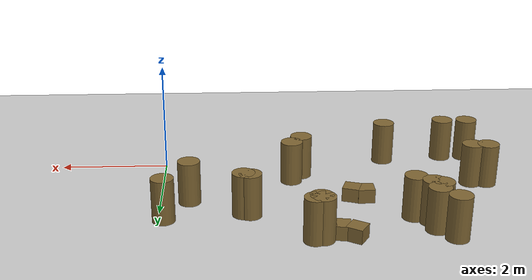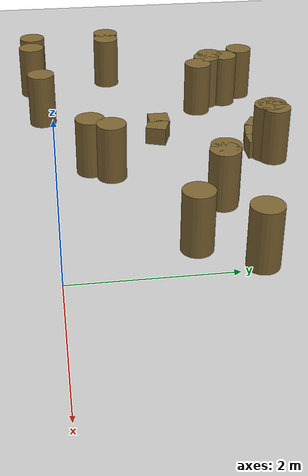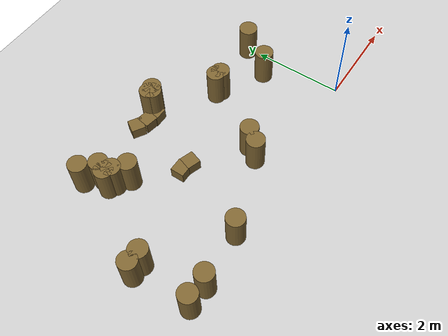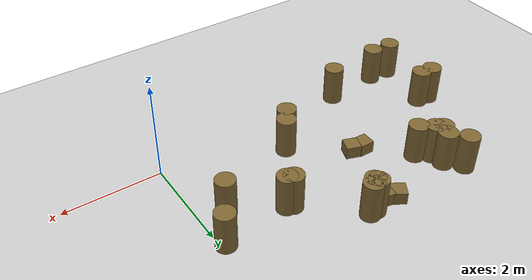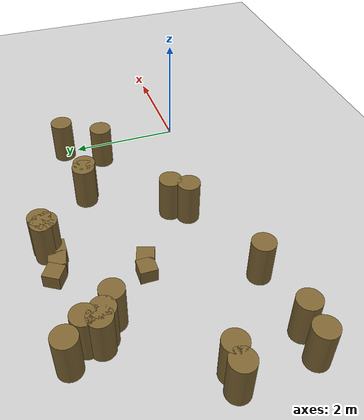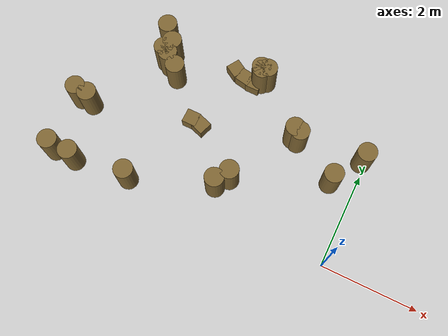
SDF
<sdf version="1.7">
 <world name="default">
  <model name="ground_plane">
   <static>1</static>
   <link name="link">
    <collision name="collision">
     <geometry><plane><normal>0 0 1</normal><size>100 100</size></plane></geometry>
     <surface><friction><ode><mu>100</mu><mu2>50</mu2></ode></friction></surface>
    </collision>
    <visual name="visual">
     <cast_shadows>0</cast_shadows>
     <geometry><plane><normal>0 0 1</normal><size>100 100</size></plane></geometry>
     <material>
      <script><uri>file://media/materials/scripts/gazebo.material</uri><name>Gazebo/Grey</name></script>
     </material>
    </visual>
   </link>
  </model>
  <model name="mini_cylinder_0_clone_0_clone_clone_clone_clone_2">
   <link name="link">
    <inertial>
     <mass>1</mass>
     <inertia><ixx>0.145833</ixx><ixy>0</ixy><ixz>0</ixz><iyy>0.145833</iyy><iyz>0</iyz><izz>0.125</izz></inertia>
    </inertial>
    <visual name="visual">
     <geometry><cylinder><radius>0.2</radius><length>0.8</length></cylinder></geometry>
     <material>
      <script><name>Gazebo/Grey</name><uri>file://media/materials/scripts/gazebo.material</uri></script>
      <shader type="vertex"><normal_map>__default__</normal_map></shader>
      <ambient>0.5 0.4 0.2 1</ambient>
      <diffuse>0.7 0.7 0.7 1</diffuse>
      <specular>0.01 0.01 0.01 1</specular>
      <emissive>0 0 0 1</emissive>
     </material>
    </visual>
    <collision name="collision">
     <geometry><cylinder><radius>0.2</radius><length>0.8</length></cylinder></geometry>
     <surface>
      <friction>
       <ode><mu>1</mu><mu2>1</mu2><fdir1>0 0 0</fdir1><slip1>0</slip1><slip2>0</slip2></ode>
       <torsional>
        <coefficient>1</coefficient>
        <patch_radius>0</patch_radius>
        <surface_radius>0</surface_radius>
        <use_patch_radius>1</use_patch_radius>
        <ode><slip>0</slip></ode>
       </torsional>
      </friction>
      <bounce><restitution_coefficient>0</restitution_coefficient><threshold>1e+06</threshold></bounce>
      <contact>
       <collide_without_contact>0</collide_without_contact>
       <collide_without_contact_bitmask>1</collide_without_contact_bitmask>
       <collide_bitmask>1</collide_bitmask>
       <ode>
        <soft_cfm>0</soft_cfm>
        <soft_erp>0.2</soft_erp>
        <kp>1e+13</kp>
        <kd>1</kd>
        <max_vel>0.01</max_vel>
        <min_depth>0</min_depth>
       </ode>
       <bullet>
        <split_impulse>1</split_impulse>
        <split_impulse_penetration_threshold>-0.01</split_impulse_penetration_threshold>
        <soft_cfm>0</soft_cfm>
        <soft_erp>0.2</soft_erp>
        <kp>1e+13</kp>
        <kd>1</kd>
       </bullet>
      </contact>
     </surface>
    </collision>
   </link>
   <static>1</static>
   <pose>-2.38035 0.779144 0.4 0 -0 0</pose>
  </model>
  <model name="mini_cylinder_0_clone_0_clone_clone_clone_clone_3">
   <link name="link">
    <inertial>
     <mass>1</mass>
     <inertia><ixx>0.145833</ixx><ixy>0</ixy><ixz>0</ixz><iyy>0.145833</iyy><iyz>0</iyz><izz>0.125</izz></inertia>
    </inertial>
    <visual name="visual">
     <geometry><cylinder><radius>0.2</radius><length>0.8</length></cylinder></geometry>
     <material>
      <script><name>Gazebo/Grey</name><uri>file://media/materials/scripts/gazebo.material</uri></script>
      <shader type="vertex"><normal_map>__default__</normal_map></shader>
      <ambient>0.5 0.4 0.2 1</ambient>
      <diffuse>0.7 0.7 0.7 1</diffuse>
      <specular>0.01 0.01 0.01 1</specular>
      <emissive>0 0 0 1</emissive>
     </material>
    </visual>
    <collision name="collision">
     <geometry><cylinder><radius>0.2</radius><length>0.8</length></cylinder></geometry>
     <surface>
      <friction>
       <ode><mu>1</mu><mu2>1</mu2><fdir1>0 0 0</fdir1><slip1>0</slip1><slip2>0</slip2></ode>
       <torsional>
        <coefficient>1</coefficient>
        <patch_radius>0</patch_radius>
        <surface_radius>0</surface_radius>
        <use_patch_radius>1</use_patch_radius>
        <ode><slip>0</slip></ode>
       </torsional>
      </friction>
      <bounce><restitution_coefficient>0</restitution_coefficient><threshold>1e+06</threshold></bounce>
      <contact>
       <collide_without_contact>0</collide_without_contact>
       <collide_without_contact_bitmask>1</collide_without_contact_bitmask>
       <collide_bitmask>1</collide_bitmask>
       <ode>
        <soft_cfm>0</soft_cfm>
        <soft_erp>0.2</soft_erp>
        <kp>1e+13</kp>
        <kd>1</kd>
        <max_vel>0.01</max_vel>
        <min_depth>0</min_depth>
       </ode>
       <bullet>
        <split_impulse>1</split_impulse>
        <split_impulse_penetration_threshold>-0.01</split_impulse_penetration_threshold>
        <soft_cfm>0</soft_cfm>
        <soft_erp>0.2</soft_erp>
        <kp>1e+13</kp>
        <kd>1</kd>
       </bullet>
      </contact>
     </surface>
    </collision>
   </link>
   <static>1</static>
   <pose>-2.5735 0.508666 0.4 0 -0 0</pose>
  </model>
  <model name="mini_cylinder_0_clone_0_clone_clone_clone_clone_clone_27">
   <link name="link">
    <inertial>
     <mass>1</mass>
     <inertia><ixx>0.145833</ixx><ixy>0</ixy><ixz>0</ixz><iyy>0.145833</iyy><iyz>0</iyz><izz>0.125</izz></inertia>
    </inertial>
    <visual name="visual">
     <geometry><cylinder><radius>0.2</radius><length>0.8</length></cylinder></geometry>
     <material>
      <script><name>Gazebo/Grey</name><uri>file://media/materials/scripts/gazebo.material</uri></script>
      <shader type="vertex"><normal_map>__default__</normal_map></shader>
      <ambient>0.5 0.4 0.2 1</ambient>
      <diffuse>0.7 0.7 0.7 1</diffuse>
      <specular>0.01 0.01 0.01 1</specular>
      <emissive>0 0 0 1</emissive>
     </material>
    </visual>
    <collision name="collision">
     <geometry><cylinder><radius>0.2</radius><length>0.8</length></cylinder></geometry>
     <surface>
      <friction>
       <ode><mu>1</mu><mu2>1</mu2><fdir1>0 0 0</fdir1><slip1>0</slip1><slip2>0</slip2></ode>
       <torsional>
        <coefficient>1</coefficient>
        <patch_radius>0</patch_radius>
        <surface_radius>0</surface_radius>
        <use_patch_radius>1</use_patch_radius>
        <ode><slip>0</slip></ode>
       </torsional>
      </friction>
      <bounce><restitution_coefficient>0</restitution_coefficient><threshold>1e+06</threshold></bounce>
      <contact>
       <collide_without_contact>0</collide_without_contact>
       <collide_without_contact_bitmask>1</collide_without_contact_bitmask>
       <collide_bitmask>1</collide_bitmask>
       <ode>
        <soft_cfm>0</soft_cfm>
        <soft_erp>0.2</soft_erp>
        <kp>1e+13</kp>
        <kd>1</kd>
        <max_vel>0.01</max_vel>
        <min_depth>0</min_depth>
       </ode>
       <bullet>
        <split_impulse>1</split_impulse>
        <split_impulse_penetration_threshold>-0.01</split_impulse_penetration_threshold>
        <soft_cfm>0</soft_cfm>
        <soft_erp>0.2</soft_erp>
        <kp>1e+13</kp>
        <kd>1</kd>
       </bullet>
      </contact>
     </surface>
    </collision>
   </link>
   <static>1</static>
   <pose>-4.23731 -0.11186 0.4 0 -0 0</pose>
  </model>
  <model name="mini_cylinder_0_clone_0_clone_clone_clone_clone_clone_44">
   <link name="link">
    <inertial>
     <mass>1</mass>
     <inertia><ixx>0.145833</ixx><ixy>0</ixy><ixz>0</ixz><iyy>0.145833</iyy><iyz>0</iyz><izz>0.125</izz></inertia>
    </inertial>
    <visual name="visual">
     <geometry><cylinder><radius>0.2</radius><length>0.8</length></cylinder></geometry>
     <material>
      <script><name>Gazebo/Grey</name><uri>file://media/materials/scripts/gazebo.material</uri></script>
      <shader type="vertex"><normal_map>__default__</normal_map></shader>
      <ambient>0.5 0.4 0.2 1</ambient>
      <diffuse>0.7 0.7 0.7 1</diffuse>
      <specular>0.01 0.01 0.01 1</specular>
      <emissive>0 0 0 1</emissive>
     </material>
    </visual>
    <collision name="collision">
     <geometry><cylinder><radius>0.2</radius><length>0.8</length></cylinder></geometry>
     <surface>
      <friction>
       <ode><mu>1</mu><mu2>1</mu2><fdir1>0 0 0</fdir1><slip1>0</slip1><slip2>0</slip2></ode>
       <torsional>
        <coefficient>1</coefficient>
        <patch_radius>0</patch_radius>
        <surface_radius>0</surface_radius>
        <use_patch_radius>1</use_patch_radius>
        <ode><slip>0</slip></ode>
       </torsional>
      </friction>
      <bounce><restitution_coefficient>0</restitution_coefficient><threshold>1e+06</threshold></bounce>
      <contact>
       <collide_without_contact>0</collide_without_contact>
       <collide_without_contact_bitmask>1</collide_without_contact_bitmask>
       <collide_bitmask>1</collide_bitmask>
       <ode>
        <soft_cfm>0</soft_cfm>
        <soft_erp>0.2</soft_erp>
        <kp>1e+13</kp>
        <kd>1</kd>
        <max_vel>0.01</max_vel>
        <min_depth>0</min_depth>
       </ode>
       <bullet>
        <split_impulse>1</split_impulse>
        <split_impulse_penetration_threshold>-0.01</split_impulse_penetration_threshold>
        <soft_cfm>0</soft_cfm>
        <soft_erp>0.2</soft_erp>
        <kp>1e+13</kp>
        <kd>1</kd>
       </bullet>
      </contact>
     </surface>
    </collision>
   </link>
   <static>1</static>
   <pose>-0.100224 2.27857 0.4 0 -0 0</pose>
  </model>
  <model name="mini_cylinder_0_clone_0_clone_clone_clone_clone_clone_46">
   <link name="link">
    <inertial>
     <mass>1</mass>
     <inertia><ixx>0.145833</ixx><ixy>0</ixy><ixz>0</ixz><iyy>0.145833</iyy><iyz>0</iyz><izz>0.125</izz></inertia>
    </inertial>
    <visual name="visual">
     <geometry><cylinder><radius>0.2</radius><length>0.8</length></cylinder></geometry>
     <material>
      <script><name>Gazebo/Grey</name><uri>file://media/materials/scripts/gazebo.material</uri></script>
      <shader type="vertex"><normal_map>__default__</normal_map></shader>
      <ambient>0.5 0.4 0.2 1</ambient>
      <diffuse>0.7 0.7 0.7 1</diffuse>
      <specular>0.01 0.01 0.01 1</specular>
      <emissive>0 0 0 1</emissive>
     </material>
    </visual>
    <collision name="collision">
     <geometry><cylinder><radius>0.2</radius><length>0.8</length></cylinder></geometry>
     <surface>
      <friction>
       <ode><mu>1</mu><mu2>1</mu2><fdir1>0 0 0</fdir1><slip1>0</slip1><slip2>0</slip2></ode>
       <torsional>
        <coefficient>1</coefficient>
        <patch_radius>0</patch_radius>
        <surface_radius>0</surface_radius>
        <use_patch_radius>1</use_patch_radius>
        <ode><slip>0</slip></ode>
       </torsional>
      </friction>
      <bounce><restitution_coefficient>0</restitution_coefficient><threshold>1e+06</threshold></bounce>
      <contact>
       <collide_without_contact>0</collide_without_contact>
       <collide_without_contact_bitmask>1</collide_without_contact_bitmask>
       <collide_bitmask>1</collide_bitmask>
       <ode>
        <soft_cfm>0</soft_cfm>
        <soft_erp>0.2</soft_erp>
        <kp>1e+13</kp>
        <kd>1</kd>
        <max_vel>0.01</max_vel>
        <min_depth>0</min_depth>
       </ode>
       <bullet>
        <split_impulse>1</split_impulse>
        <split_impulse_penetration_threshold>-0.01</split_impulse_penetration_threshold>
        <soft_cfm>0</soft_cfm>
        <soft_erp>0.2</soft_erp>
        <kp>1e+13</kp>
        <kd>1</kd>
       </bullet>
      </contact>
     </surface>
    </collision>
   </link>
   <static>1</static>
   <pose>-5.41639 -0.237959 0.4 0 -0 0</pose>
  </model>
  <model name="mini_cylinder_0_clone_0_clone_clone_clone_clone_clone_47">
   <link name="link">
    <inertial>
     <mass>1</mass>
     <inertia><ixx>0.145833</ixx><ixy>0</ixy><ixz>0</ixz><iyy>0.145833</iyy><iyz>0</iyz><izz>0.125</izz></inertia>
    </inertial>
    <visual name="visual">
     <geometry><cylinder><radius>0.2</radius><length>0.8</length></cylinder></geometry>
     <material>
      <script><name>Gazebo/Grey</name><uri>file://media/materials/scripts/gazebo.material</uri></script>
      <shader type="vertex"><normal_map>__default__</normal_map></shader>
      <ambient>0.5 0.4 0.2 1</ambient>
      <diffuse>0.7 0.7 0.7 1</diffuse>
      <specular>0.01 0.01 0.01 1</specular>
      <emissive>0 0 0 1</emissive>
     </material>
    </visual>
    <collision name="collision">
     <geometry><cylinder><radius>0.2</radius><length>0.8</length></cylinder></geometry>
     <surface>
      <friction>
       <ode><mu>1</mu><mu2>1</mu2><fdir1>0 0 0</fdir1><slip1>0</slip1><slip2>0</slip2></ode>
       <torsional>
        <coefficient>1</coefficient>
        <patch_radius>0</patch_radius>
        <surface_radius>0</surface_radius>
        <use_patch_radius>1</use_patch_radius>
        <ode><slip>0</slip></ode>
       </torsional>
      </friction>
      <bounce><restitution_coefficient>0</restitution_coefficient><threshold>1e+06</threshold></bounce>
      <contact>
       <collide_without_contact>0</collide_without_contact>
       <collide_without_contact_bitmask>1</collide_without_contact_bitmask>
       <collide_bitmask>1</collide_bitmask>
       <ode>
        <soft_cfm>0</soft_cfm>
        <soft_erp>0.2</soft_erp>
        <kp>1e+13</kp>
        <kd>1</kd>
        <max_vel>0.01</max_vel>
        <min_depth>0</min_depth>
       </ode>
       <bullet>
        <split_impulse>1</split_impulse>
        <split_impulse_penetration_threshold>-0.01</split_impulse_penetration_threshold>
        <soft_cfm>0</soft_cfm>
        <soft_erp>0.2</soft_erp>
        <kp>1e+13</kp>
        <kd>1</kd>
       </bullet>
      </contact>
     </surface>
    </collision>
   </link>
   <static>1</static>
   <pose>-5.88824 -0.222229 0.4 0 -0 0</pose>
  </model>
  <model name="mini_box_0.3_clone_12">
   <link name="link">
    <inertial>
     <mass>1</mass>
     <inertia>
      <ixx>0.166667</ixx>
      <ixy>0</ixy>
      <ixz>0</ixz>
      <iyy>0.166667</iyy>
      <iyz>0</iyz>
      <izz>0.166667</izz>
     </inertia>
    </inertial>
    <visual name="visual">
     <geometry><box><size>0.3 0.3 0.5</size></box></geometry>
     <material>
      <script><name>Gazebo/Grey</name><uri>file://media/materials/scripts/gazebo.material</uri></script>
      <shader type="vertex"><normal_map>__default__</normal_map></shader>
      <ambient>0.5 0.4 0.2 1</ambient>
      <diffuse>0.7 0.7 0.7 1</diffuse>
      <specular>0.01 0.01 0.01 1</specular>
      <emissive>0 0 0 1</emissive>
     </material>
    </visual>
    <collision name="collision">
     <geometry><box><size>0.3 0.3 0.3</size></box></geometry>
     <surface>
      <friction>
       <ode><mu>1</mu><mu2>1</mu2><fdir1>0 0 0</fdir1><slip1>0</slip1><slip2>0</slip2></ode>
       <torsional>
        <coefficient>1</coefficient>
        <patch_radius>0</patch_radius>
        <surface_radius>0</surface_radius>
        <use_patch_radius>1</use_patch_radius>
        <ode><slip>0</slip></ode>
       </torsional>
      </friction>
      <bounce><restitution_coefficient>0</restitution_coefficient><threshold>1e+06</threshold></bounce>
      <contact>
       <collide_without_contact>0</collide_without_contact>
       <collide_without_contact_bitmask>1</collide_without_contact_bitmask>
       <collide_bitmask>1</collide_bitmask>
       <ode>
        <soft_cfm>0</soft_cfm>
        <soft_erp>0.2</soft_erp>
        <kp>1e+13</kp>
        <kd>1</kd>
        <max_vel>0.01</max_vel>
        <min_depth>0</min_depth>
       </ode>
       <bullet>
        <split_impulse>1</split_impulse>
        <split_impulse_penetration_threshold>-0.01</split_impulse_penetration_threshold>
        <soft_cfm>0</soft_cfm>
        <soft_erp>0.2</soft_erp>
        <kp>1e+13</kp>
        <kd>1</kd>
       </bullet>
      </contact>
     </surface>
    </collision>
   </link>
   <static>1</static>
   <pose>-2.81926 2.90527 0 0 -0 0</pose>
  </model>
  <model name="mini_box_0.3_clone_13">
   <link name="link">
    <inertial>
     <mass>1</mass>
     <inertia>
      <ixx>0.166667</ixx>
      <ixy>0</ixy>
      <ixz>0</ixz>
      <iyy>0.166667</iyy>
      <iyz>0</iyz>
      <izz>0.166667</izz>
     </inertia>
    </inertial>
    <visual name="visual">
     <geometry><box><size>0.3 0.3 0.5</size></box></geometry>
     <material>
      <script><name>Gazebo/Grey</name><uri>file://media/materials/scripts/gazebo.material</uri></script>
      <shader type="vertex"><normal_map>__default__</normal_map></shader>
      <ambient>0.5 0.4 0.2 1</ambient>
      <diffuse>0.7 0.7 0.7 1</diffuse>
      <specular>0.01 0.01 0.01 1</specular>
      <emissive>0 0 0 1</emissive>
     </material>
    </visual>
    <collision name="collision">
     <geometry><box><size>0.3 0.3 0.3</size></box></geometry>
     <surface>
      <friction>
       <ode><mu>1</mu><mu2>1</mu2><fdir1>0 0 0</fdir1><slip1>0</slip1><slip2>0</slip2></ode>
       <torsional>
        <coefficient>1</coefficient>
        <patch_radius>0</patch_radius>
        <surface_radius>0</surface_radius>
        <use_patch_radius>1</use_patch_radius>
        <ode><slip>0</slip></ode>
       </torsional>
      </friction>
      <bounce><restitution_coefficient>0</restitution_coefficient><threshold>1e+06</threshold></bounce>
      <contact>
       <collide_without_contact>0</collide_without_contact>
       <collide_without_contact_bitmask>1</collide_without_contact_bitmask>
       <collide_bitmask>1</collide_bitmask>
       <ode>
        <soft_cfm>0</soft_cfm>
        <soft_erp>0.2</soft_erp>
        <kp>1e+13</kp>
        <kd>1</kd>
        <max_vel>0.01</max_vel>
        <min_depth>0</min_depth>
       </ode>
       <bullet>
        <split_impulse>1</split_impulse>
        <split_impulse_penetration_threshold>-0.01</split_impulse_penetration_threshold>
        <soft_cfm>0</soft_cfm>
        <soft_erp>0.2</soft_erp>
        <kp>1e+13</kp>
        <kd>1</kd>
       </bullet>
      </contact>
     </surface>
    </collision>
   </link>
   <static>1</static>
   <pose>-3.05619 2.93682 0 0 0 -0.172565</pose>
  </model>
  <model name="mini_box_0.3_clone_14">
   <link name="link">
    <inertial>
     <mass>1</mass>
     <inertia>
      <ixx>0.166667</ixx>
      <ixy>0</ixy>
      <ixz>0</ixz>
      <iyy>0.166667</iyy>
      <iyz>0</iyz>
      <izz>0.166667</izz>
     </inertia>
    </inertial>
    <visual name="visual">
     <geometry><box><size>0.3 0.3 0.5</size></box></geometry>
     <material>
      <script><name>Gazebo/Grey</name><uri>file://media/materials/scripts/gazebo.material</uri></script>
      <shader type="vertex"><normal_map>__default__</normal_map></shader>
      <ambient>0.5 0.4 0.2 1</ambient>
      <diffuse>0.7 0.7 0.7 1</diffuse>
      <specular>0.01 0.01 0.01 1</specular>
      <emissive>0 0 0 1</emissive>
     </material>
    </visual>
    <collision name="collision">
     <geometry><box><size>0.3 0.3 0.3</size></box></geometry>
     <surface>
      <friction>
       <ode><mu>1</mu><mu2>1</mu2><fdir1>0 0 0</fdir1><slip1>0</slip1><slip2>0</slip2></ode>
       <torsional>
        <coefficient>1</coefficient>
        <patch_radius>0</patch_radius>
        <surface_radius>0</surface_radius>
        <use_patch_radius>1</use_patch_radius>
        <ode><slip>0</slip></ode>
       </torsional>
      </friction>
      <bounce><restitution_coefficient>0</restitution_coefficient><threshold>1e+06</threshold></bounce>
      <contact>
       <collide_without_contact>0</collide_without_contact>
       <collide_without_contact_bitmask>1</collide_without_contact_bitmask>
       <collide_bitmask>1</collide_bitmask>
       <ode>
        <soft_cfm>0</soft_cfm>
        <soft_erp>0.2</soft_erp>
        <kp>1e+13</kp>
        <kd>1</kd>
        <max_vel>0.01</max_vel>
        <min_depth>0</min_depth>
       </ode>
       <bullet>
        <split_impulse>1</split_impulse>
        <split_impulse_penetration_threshold>-0.01</split_impulse_penetration_threshold>
        <soft_cfm>0</soft_cfm>
        <soft_erp>0.2</soft_erp>
        <kp>1e+13</kp>
        <kd>1</kd>
       </bullet>
      </contact>
     </surface>
    </collision>
   </link>
   <static>1</static>
   <pose>-3.30883 3.03157 0 0 0 -0.55205</pose>
  </model>
  <model name="mini_box_0.3_clone_12_clone">
   <link name="link">
    <inertial>
     <mass>1</mass>
     <inertia>
      <ixx>0.166667</ixx>
      <ixy>0</ixy>
      <ixz>0</ixz>
      <iyy>0.166667</iyy>
      <iyz>0</iyz>
      <izz>0.166667</izz>
     </inertia>
    </inertial>
    <visual name="visual">
     <geometry><box><size>0.3 0.3 0.5</size></box></geometry>
     <material>
      <script><name>Gazebo/Grey</name><uri>file://media/materials/scripts/gazebo.material</uri></script>
      <shader type="vertex"><normal_map>__default__</normal_map></shader>
      <ambient>0.5 0.4 0.2 1</ambient>
      <diffuse>0.7 0.7 0.7 1</diffuse>
      <specular>0.01 0.01 0.01 1</specular>
      <emissive>0 0 0 1</emissive>
     </material>
    </visual>
    <collision name="collision">
     <geometry><box><size>0.3 0.3 0.3</size></box></geometry>
     <surface>
      <friction>
       <ode><mu>1</mu><mu2>1</mu2><fdir1>0 0 0</fdir1><slip1>0</slip1><slip2>0</slip2></ode>
       <torsional>
        <coefficient>1</coefficient>
        <patch_radius>0</patch_radius>
        <surface_radius>0</surface_radius>
        <use_patch_radius>1</use_patch_radius>
        <ode><slip>0</slip></ode>
       </torsional>
      </friction>
      <bounce><restitution_coefficient>0</restitution_coefficient><threshold>1e+06</threshold></bounce>
      <contact>
       <collide_without_contact>0</collide_without_contact>
       <collide_without_contact_bitmask>1</collide_without_contact_bitmask>
       <collide_bitmask>1</collide_bitmask>
       <ode>
        <soft_cfm>0</soft_cfm>
        <soft_erp>0.2</soft_erp>
        <kp>1e+13</kp>
        <kd>1</kd>
        <max_vel>0.01</max_vel>
        <min_depth>0</min_depth>
       </ode>
       <bullet>
        <split_impulse>1</split_impulse>
        <split_impulse_penetration_threshold>-0.01</split_impulse_penetration_threshold>
        <soft_cfm>0</soft_cfm>
        <soft_erp>0.2</soft_erp>
        <kp>1e+13</kp>
        <kd>1</kd>
       </bullet>
      </contact>
     </surface>
    </collision>
   </link>
   <static>1</static>
   <pose>-3.65865 1.60216 0 0 -0 0</pose>
  </model>
  <model name="mini_box_0.3_clone_12_clone_0">
   <link name="link">
    <inertial>
     <mass>1</mass>
     <inertia>
      <ixx>0.166667</ixx>
      <ixy>0</ixy>
      <ixz>0</ixz>
      <iyy>0.166667</iyy>
      <iyz>0</iyz>
      <izz>0.166667</izz>
     </inertia>
    </inertial>
    <visual name="visual">
     <geometry><box><size>0.3 0.3 0.5</size></box></geometry>
     <material>
      <script><name>Gazebo/Grey</name><uri>file://media/materials/scripts/gazebo.material</uri></script>
      <shader type="vertex"><normal_map>__default__</normal_map></shader>
      <ambient>0.5 0.4 0.2 1</ambient>
      <diffuse>0.7 0.7 0.7 1</diffuse>
      <specular>0.01 0.01 0.01 1</specular>
      <emissive>0 0 0 1</emissive>
     </material>
    </visual>
    <collision name="collision">
     <geometry><box><size>0.3 0.3 0.3</size></box></geometry>
     <surface>
      <friction>
       <ode><mu>1</mu><mu2>1</mu2><fdir1>0 0 0</fdir1><slip1>0</slip1><slip2>0</slip2></ode>
       <torsional>
        <coefficient>1</coefficient>
        <patch_radius>0</patch_radius>
        <surface_radius>0</surface_radius>
        <use_patch_radius>1</use_patch_radius>
        <ode><slip>0</slip></ode>
       </torsional>
      </friction>
      <bounce><restitution_coefficient>0</restitution_coefficient><threshold>1e+06</threshold></bounce>
      <contact>
       <collide_without_contact>0</collide_without_contact>
       <collide_without_contact_bitmask>1</collide_without_contact_bitmask>
       <collide_bitmask>1</collide_bitmask>
       <ode>
        <soft_cfm>0</soft_cfm>
        <soft_erp>0.2</soft_erp>
        <kp>1e+13</kp>
        <kd>1</kd>
        <max_vel>0.01</max_vel>
        <min_depth>0</min_depth>
       </ode>
       <bullet>
        <split_impulse>1</split_impulse>
        <split_impulse_penetration_threshold>-0.01</split_impulse_penetration_threshold>
        <soft_cfm>0</soft_cfm>
        <soft_erp>0.2</soft_erp>
        <kp>1e+13</kp>
        <kd>1</kd>
       </bullet>
      </contact>
     </surface>
    </collision>
   </link>
   <static>1</static>
   <pose>-3.41628 1.55201 0 0 0 -0.326474</pose>
  </model>
  <model name="mini_cylinder_0_clone_0_clone_clone_clone_clone_clone_49_clone">
   <link name="link">
    <inertial>
     <mass>1</mass>
     <inertia><ixx>0.145833</ixx><ixy>0</ixy><ixz>0</ixz><iyy>0.145833</iyy><iyz>0</iyz><izz>0.125</izz></inertia>
    </inertial>
    <visual name="visual">
     <geometry><cylinder><radius>0.2</radius><length>0.8</length></cylinder></geometry>
     <material>
      <script><name>Gazebo/Grey</name><uri>file://media/materials/scripts/gazebo.material</uri></script>
      <shader type="vertex"><normal_map>__default__</normal_map></shader>
      <ambient>0.5 0.4 0.2 1</ambient>
      <diffuse>0.7 0.7 0.7 1</diffuse>
      <specular>0.01 0.01 0.01 1</specular>
      <emissive>0 0 0 1</emissive>
     </material>
    </visual>
    <collision name="collision">
     <geometry><cylinder><radius>0.2</radius><length>0.8</length></cylinder></geometry>
     <surface>
      <friction>
       <ode><mu>1</mu><mu2>1</mu2><fdir1>0 0 0</fdir1><slip1>0</slip1><slip2>0</slip2></ode>
       <torsional>
        <coefficient>1</coefficient>
        <patch_radius>0</patch_radius>
        <surface_radius>0</surface_radius>
        <use_patch_radius>1</use_patch_radius>
        <ode><slip>0</slip></ode>
       </torsional>
      </friction>
      <bounce><restitution_coefficient>0</restitution_coefficient><threshold>1e+06</threshold></bounce>
      <contact>
       <collide_without_contact>0</collide_without_contact>
       <collide_without_contact_bitmask>1</collide_without_contact_bitmask>
       <collide_bitmask>1</collide_bitmask>
       <ode>
        <soft_cfm>0</soft_cfm>
        <soft_erp>0.2</soft_erp>
        <kp>1e+13</kp>
        <kd>1</kd>
        <max_vel>0.01</max_vel>
        <min_depth>0</min_depth>
       </ode>
       <bullet>
        <split_impulse>1</split_impulse>
        <split_impulse_penetration_threshold>-0.01</split_impulse_penetration_threshold>
        <soft_cfm>0</soft_cfm>
        <soft_erp>0.2</soft_erp>
        <kp>1e+13</kp>
        <kd>1</kd>
       </bullet>
      </contact>
     </surface>
    </collision>
   </link>
   <static>1</static>
   <pose>-2.75224 3.06018 0.4 0 -0 0</pose>
  </model>
  <model name="mini_cylinder_0_clone_0_clone_clone_clone_clone_clone_49_clone_7">
   <link name="link">
    <inertial>
     <mass>1</mass>
     <inertia><ixx>0.145833</ixx><ixy>0</ixy><ixz>0</ixz><iyy>0.145833</iyy><iyz>0</iyz><izz>0.125</izz></inertia>
    </inertial>
    <visual name="visual">
     <geometry><cylinder><radius>0.2</radius><length>0.8</length></cylinder></geometry>
     <material>
      <script><name>Gazebo/Grey</name><uri>file://media/materials/scripts/gazebo.material</uri></script>
      <shader type="vertex"><normal_map>__default__</normal_map></shader>
      <ambient>0.5 0.4 0.2 1</ambient>
      <diffuse>0.7 0.7 0.7 1</diffuse>
      <specular>0.01 0.01 0.01 1</specular>
      <emissive>0 0 0 1</emissive>
     </material>
    </visual>
    <collision name="collision">
     <geometry><cylinder><radius>0.2</radius><length>0.8</length></cylinder></geometry>
     <surface>
      <friction>
       <ode><mu>1</mu><mu2>1</mu2><fdir1>0 0 0</fdir1><slip1>0</slip1><slip2>0</slip2></ode>
       <torsional>
        <coefficient>1</coefficient>
        <patch_radius>0</patch_radius>
        <surface_radius>0</surface_radius>
        <use_patch_radius>1</use_patch_radius>
        <ode><slip>0</slip></ode>
       </torsional>
      </friction>
      <bounce><restitution_coefficient>0</restitution_coefficient><threshold>1e+06</threshold></bounce>
      <contact>
       <collide_without_contact>0</collide_without_contact>
       <collide_without_contact_bitmask>1</collide_without_contact_bitmask>
       <collide_bitmask>1</collide_bitmask>
       <ode>
        <soft_cfm>0</soft_cfm>
        <soft_erp>0.2</soft_erp>
        <kp>1e+13</kp>
        <kd>1</kd>
        <max_vel>0.01</max_vel>
        <min_depth>0</min_depth>
       </ode>
       <bullet>
        <split_impulse>1</split_impulse>
        <split_impulse_penetration_threshold>-0.01</split_impulse_penetration_threshold>
        <soft_cfm>0</soft_cfm>
        <soft_erp>0.2</soft_erp>
        <kp>1e+13</kp>
        <kd>1</kd>
       </bullet>
      </contact>
     </surface>
    </collision>
   </link>
   <static>1</static>
   <pose>-2.71436 3.00335 0.4 0 -0 0</pose>
  </model>
  <model name="mini_cylinder_0_clone_0_clone_clone_clone_clone_clone_49_clone_9">
   <link name="link">
    <inertial>
     <mass>1</mass>
     <inertia><ixx>0.145833</ixx><ixy>0</ixy><ixz>0</ixz><iyy>0.145833</iyy><iyz>0</iyz><izz>0.125</izz></inertia>
    </inertial>
    <visual name="visual">
     <geometry><cylinder><radius>0.2</radius><length>0.8</length></cylinder></geometry>
     <material>
      <script><name>Gazebo/Grey</name><uri>file://media/materials/scripts/gazebo.material</uri></script>
      <shader type="vertex"><normal_map>__default__</normal_map></shader>
      <ambient>0.5 0.4 0.2 1</ambient>
      <diffuse>0.7 0.7 0.7 1</diffuse>
      <specular>0.01 0.01 0.01 1</specular>
      <emissive>0 0 0 1</emissive>
     </material>
    </visual>
    <collision name="collision">
     <geometry><cylinder><radius>0.2</radius><length>0.8</length></cylinder></geometry>
     <surface>
      <friction>
       <ode><mu>1</mu><mu2>1</mu2><fdir1>0 0 0</fdir1><slip1>0</slip1><slip2>0</slip2></ode>
       <torsional>
        <coefficient>1</coefficient>
        <patch_radius>0</patch_radius>
        <surface_radius>0</surface_radius>
        <use_patch_radius>1</use_patch_radius>
        <ode><slip>0</slip></ode>
       </torsional>
      </friction>
      <bounce><restitution_coefficient>0</restitution_coefficient><threshold>1e+06</threshold></bounce>
      <contact>
       <collide_without_contact>0</collide_without_contact>
       <collide_without_contact_bitmask>1</collide_without_contact_bitmask>
       <collide_bitmask>1</collide_bitmask>
       <ode>
        <soft_cfm>0</soft_cfm>
        <soft_erp>0.2</soft_erp>
        <kp>1e+13</kp>
        <kd>1</kd>
        <max_vel>0.01</max_vel>
        <min_depth>0</min_depth>
       </ode>
       <bullet>
        <split_impulse>1</split_impulse>
        <split_impulse_penetration_threshold>-0.01</split_impulse_penetration_threshold>
        <soft_cfm>0</soft_cfm>
        <soft_erp>0.2</soft_erp>
        <kp>1e+13</kp>
        <kd>1</kd>
       </bullet>
      </contact>
     </surface>
    </collision>
   </link>
   <static>1</static>
   <pose>-4.94917 3.09806 0.4 0 -0 0</pose>
  </model>
  <model name="mini_cylinder_0_clone_0_clone_clone_clone_clone_clone_49_clone_10">
   <link name="link">
    <inertial>
     <mass>1</mass>
     <inertia><ixx>0.145833</ixx><ixy>0</ixy><ixz>0</ixz><iyy>0.145833</iyy><iyz>0</iyz><izz>0.125</izz></inertia>
    </inertial>
    <visual name="visual">
     <geometry><cylinder><radius>0.2</radius><length>0.8</length></cylinder></geometry>
     <material>
      <script><name>Gazebo/Grey</name><uri>file://media/materials/scripts/gazebo.material</uri></script>
      <shader type="vertex"><normal_map>__default__</normal_map></shader>
      <ambient>0.5 0.4 0.2 1</ambient>
      <diffuse>0.7 0.7 0.7 1</diffuse>
      <specular>0.01 0.01 0.01 1</specular>
      <emissive>0 0 0 1</emissive>
     </material>
    </visual>
    <collision name="collision">
     <geometry><cylinder><radius>0.2</radius><length>0.8</length></cylinder></geometry>
     <surface>
      <friction>
       <ode><mu>1</mu><mu2>1</mu2><fdir1>0 0 0</fdir1><slip1>0</slip1><slip2>0</slip2></ode>
       <torsional>
        <coefficient>1</coefficient>
        <patch_radius>0</patch_radius>
        <surface_radius>0</surface_radius>
        <use_patch_radius>1</use_patch_radius>
        <ode><slip>0</slip></ode>
       </torsional>
      </friction>
      <bounce><restitution_coefficient>0</restitution_coefficient><threshold>1e+06</threshold></bounce>
      <contact>
       <collide_without_contact>0</collide_without_contact>
       <collide_without_contact_bitmask>1</collide_without_contact_bitmask>
       <collide_bitmask>1</collide_bitmask>
       <ode>
        <soft_cfm>0</soft_cfm>
        <soft_erp>0.2</soft_erp>
        <kp>1e+13</kp>
        <kd>1</kd>
        <max_vel>0.01</max_vel>
        <min_depth>0</min_depth>
       </ode>
       <bullet>
        <split_impulse>1</split_impulse>
        <split_impulse_penetration_threshold>-0.01</split_impulse_penetration_threshold>
        <soft_cfm>0</soft_cfm>
        <soft_erp>0.2</soft_erp>
        <kp>1e+13</kp>
        <kd>1</kd>
       </bullet>
      </contact>
     </surface>
    </collision>
   </link>
   <static>1</static>
   <pose>-4.68403 2.79503 0.4 0 -0 0</pose>
  </model>
  <model name="mini_cylinder_0_clone_0_clone_clone_clone_clone_clone_49_clone_11">
   <link name="link">
    <inertial>
     <mass>1</mass>
     <inertia><ixx>0.145833</ixx><ixy>0</ixy><ixz>0</ixz><iyy>0.145833</iyy><iyz>0</iyz><izz>0.125</izz></inertia>
    </inertial>
    <visual name="visual">
     <geometry><cylinder><radius>0.2</radius><length>0.8</length></cylinder></geometry>
     <material>
      <script><name>Gazebo/Grey</name><uri>file://media/materials/scripts/gazebo.material</uri></script>
      <shader type="vertex"><normal_map>__default__</normal_map></shader>
      <ambient>0.5 0.4 0.2 1</ambient>
      <diffuse>0.7 0.7 0.7 1</diffuse>
      <specular>0.01 0.01 0.01 1</specular>
      <emissive>0 0 0 1</emissive>
     </material>
    </visual>
    <collision name="collision">
     <geometry><cylinder><radius>0.2</radius><length>0.8</length></cylinder></geometry>
     <surface>
      <friction>
       <ode><mu>1</mu><mu2>1</mu2><fdir1>0 0 0</fdir1><slip1>0</slip1><slip2>0</slip2></ode>
       <torsional>
        <coefficient>1</coefficient>
        <patch_radius>0</patch_radius>
        <surface_radius>0</surface_radius>
        <use_patch_radius>1</use_patch_radius>
        <ode><slip>0</slip></ode>
       </torsional>
      </friction>
      <bounce><restitution_coefficient>0</restitution_coefficient><threshold>1e+06</threshold></bounce>
      <contact>
       <collide_without_contact>0</collide_without_contact>
       <collide_without_contact_bitmask>1</collide_without_contact_bitmask>
       <collide_bitmask>1</collide_bitmask>
       <ode>
        <soft_cfm>0</soft_cfm>
        <soft_erp>0.2</soft_erp>
        <kp>1e+13</kp>
        <kd>1</kd>
        <max_vel>0.01</max_vel>
        <min_depth>0</min_depth>
       </ode>
       <bullet>
        <split_impulse>1</split_impulse>
        <split_impulse_penetration_threshold>-0.01</split_impulse_penetration_threshold>
        <soft_cfm>0</soft_cfm>
        <soft_erp>0.2</soft_erp>
        <kp>1e+13</kp>
        <kd>1</kd>
       </bullet>
      </contact>
     </surface>
    </collision>
   </link>
   <static>1</static>
   <pose>-4.77871 2.5867 0.4 0 -0 0</pose>
  </model>
  <model name="mini_cylinder_0_clone_0_clone_clone_clone_clone_clone_49_clone_12">
   <link name="link">
    <inertial>
     <mass>1</mass>
     <inertia><ixx>0.145833</ixx><ixy>0</ixy><ixz>0</ixz><iyy>0.145833</iyy><iyz>0</iyz><izz>0.125</izz></inertia>
    </inertial>
    <visual name="visual">
     <geometry><cylinder><radius>0.2</radius><length>0.8</length></cylinder></geometry>
     <material>
      <script><name>Gazebo/Grey</name><uri>file://media/materials/scripts/gazebo.material</uri></script>
      <shader type="vertex"><normal_map>__default__</normal_map></shader>
      <ambient>0.5 0.4 0.2 1</ambient>
      <diffuse>0.7 0.7 0.7 1</diffuse>
      <specular>0.01 0.01 0.01 1</specular>
      <emissive>0 0 0 1</emissive>
     </material>
    </visual>
    <collision name="collision">
     <geometry><cylinder><radius>0.2</radius><length>0.8</length></cylinder></geometry>
     <surface>
      <friction>
       <ode><mu>1</mu><mu2>1</mu2><fdir1>0 0 0</fdir1><slip1>0</slip1><slip2>0</slip2></ode>
       <torsional>
        <coefficient>1</coefficient>
        <patch_radius>0</patch_radius>
        <surface_radius>0</surface_radius>
        <use_patch_radius>1</use_patch_radius>
        <ode><slip>0</slip></ode>
       </torsional>
      </friction>
      <bounce><restitution_coefficient>0</restitution_coefficient><threshold>1e+06</threshold></bounce>
      <contact>
       <collide_without_contact>0</collide_without_contact>
       <collide_without_contact_bitmask>1</collide_without_contact_bitmask>
       <collide_bitmask>1</collide_bitmask>
       <ode>
        <soft_cfm>0</soft_cfm>
        <soft_erp>0.2</soft_erp>
        <kp>1e+13</kp>
        <kd>1</kd>
        <max_vel>0.01</max_vel>
        <min_depth>0</min_depth>
       </ode>
       <bullet>
        <split_impulse>1</split_impulse>
        <split_impulse_penetration_threshold>-0.01</split_impulse_penetration_threshold>
        <soft_cfm>0</soft_cfm>
        <soft_erp>0.2</soft_erp>
        <kp>1e+13</kp>
        <kd>1</kd>
       </bullet>
      </contact>
     </surface>
    </collision>
   </link>
   <static>1</static>
   <pose>-4.64617 2.51094 0.4 0 -0 0</pose>
  </model>
  <model name="mini_cylinder_0_clone_0_clone_clone_clone_clone_clone_49_clone_13">
   <link name="link">
    <inertial>
     <mass>1</mass>
     <inertia><ixx>0.145833</ixx><ixy>0</ixy><ixz>0</ixz><iyy>0.145833</iyy><iyz>0</iyz><izz>0.125</izz></inertia>
    </inertial>
    <visual name="visual">
     <geometry><cylinder><radius>0.2</radius><length>0.8</length></cylinder></geometry>
     <material>
      <script><name>Gazebo/Grey</name><uri>file://media/materials/scripts/gazebo.material</uri></script>
      <shader type="vertex"><normal_map>__default__</normal_map></shader>
      <ambient>0.5 0.4 0.2 1</ambient>
      <diffuse>0.7 0.7 0.7 1</diffuse>
      <specular>0.01 0.01 0.01 1</specular>
      <emissive>0 0 0 1</emissive>
     </material>
    </visual>
    <collision name="collision">
     <geometry><cylinder><radius>0.2</radius><length>0.8</length></cylinder></geometry>
     <surface>
      <friction>
       <ode><mu>1</mu><mu2>1</mu2><fdir1>0 0 0</fdir1><slip1>0</slip1><slip2>0</slip2></ode>
       <torsional>
        <coefficient>1</coefficient>
        <patch_radius>0</patch_radius>
        <surface_radius>0</surface_radius>
        <use_patch_radius>1</use_patch_radius>
        <ode><slip>0</slip></ode>
       </torsional>
      </friction>
      <bounce><restitution_coefficient>0</restitution_coefficient><threshold>1e+06</threshold></bounce>
      <contact>
       <collide_without_contact>0</collide_without_contact>
       <collide_without_contact_bitmask>1</collide_without_contact_bitmask>
       <collide_bitmask>1</collide_bitmask>
       <ode>
        <soft_cfm>0</soft_cfm>
        <soft_erp>0.2</soft_erp>
        <kp>1e+13</kp>
        <kd>1</kd>
        <max_vel>0.01</max_vel>
        <min_depth>0</min_depth>
       </ode>
       <bullet>
        <split_impulse>1</split_impulse>
        <split_impulse_penetration_threshold>-0.01</split_impulse_penetration_threshold>
        <soft_cfm>0</soft_cfm>
        <soft_erp>0.2</soft_erp>
        <kp>1e+13</kp>
        <kd>1</kd>
       </bullet>
      </contact>
     </surface>
    </collision>
   </link>
   <static>1</static>
   <pose>-4.381 2.32154 0.4 0 -0 0</pose>
  </model>
  <model name="mini_cylinder_0_clone_0_clone_clone_clone_clone_clone_49_clone_23">
   <link name="link">
    <inertial>
     <mass>1</mass>
     <inertia><ixx>0.145833</ixx><ixy>0</ixy><ixz>0</ixz><iyy>0.145833</iyy><iyz>0</iyz><izz>0.125</izz></inertia>
    </inertial>
    <visual name="visual">
     <geometry><cylinder><radius>0.2</radius><length>0.8</length></cylinder></geometry>
     <material>
      <script><name>Gazebo/Grey</name><uri>file://media/materials/scripts/gazebo.material</uri></script>
      <shader type="vertex"><normal_map>__default__</normal_map></shader>
      <ambient>0.5 0.4 0.2 1</ambient>
      <diffuse>0.7 0.7 0.7 1</diffuse>
      <specular>0.01 0.01 0.01 1</specular>
      <emissive>0 0 0 1</emissive>
     </material>
    </visual>
    <collision name="collision">
     <geometry><cylinder><radius>0.2</radius><length>0.8</length></cylinder></geometry>
     <surface>
      <friction>
       <ode><mu>1</mu><mu2>1</mu2><fdir1>0 0 0</fdir1><slip1>0</slip1><slip2>0</slip2></ode>
       <torsional>
        <coefficient>1</coefficient>
        <patch_radius>0</patch_radius>
        <surface_radius>0</surface_radius>
        <use_patch_radius>1</use_patch_radius>
        <ode><slip>0</slip></ode>
       </torsional>
      </friction>
      <bounce><restitution_coefficient>0</restitution_coefficient><threshold>1e+06</threshold></bounce>
      <contact>
       <collide_without_contact>0</collide_without_contact>
       <collide_without_contact_bitmask>1</collide_without_contact_bitmask>
       <collide_bitmask>1</collide_bitmask>
       <ode>
        <soft_cfm>0</soft_cfm>
        <soft_erp>0.2</soft_erp>
        <kp>1e+13</kp>
        <kd>1</kd>
        <max_vel>0.01</max_vel>
        <min_depth>0</min_depth>
       </ode>
       <bullet>
        <split_impulse>1</split_impulse>
        <split_impulse_penetration_threshold>-0.01</split_impulse_penetration_threshold>
        <soft_cfm>0</soft_cfm>
        <soft_erp>0.2</soft_erp>
        <kp>1e+13</kp>
        <kd>1</kd>
       </bullet>
      </contact>
     </surface>
    </collision>
   </link>
   <static>1</static>
   <pose>-1.46754 2.11081 0.4 0 -0 0</pose>
  </model>
  <model name="mini_cylinder_0_clone_0_clone_clone_clone_clone_clone_49_clone_24">
   <link name="link">
    <inertial>
     <mass>1</mass>
     <inertia><ixx>0.145833</ixx><ixy>0</ixy><ixz>0</ixz><iyy>0.145833</iyy><iyz>0</iyz><izz>0.125</izz></inertia>
    </inertial>
    <visual name="visual">
     <geometry><cylinder><radius>0.2</radius><length>0.8</length></cylinder></geometry>
     <material>
      <script><name>Gazebo/Grey</name><uri>file://media/materials/scripts/gazebo.material</uri></script>
      <shader type="vertex"><normal_map>__default__</normal_map></shader>
      <ambient>0.5 0.4 0.2 1</ambient>
      <diffuse>0.7 0.7 0.7 1</diffuse>
      <specular>0.01 0.01 0.01 1</specular>
      <emissive>0 0 0 1</emissive>
     </material>
    </visual>
    <collision name="collision">
     <geometry><cylinder><radius>0.2</radius><length>0.8</length></cylinder></geometry>
     <surface>
      <friction>
       <ode><mu>1</mu><mu2>1</mu2><fdir1>0 0 0</fdir1><slip1>0</slip1><slip2>0</slip2></ode>
       <torsional>
        <coefficient>1</coefficient>
        <patch_radius>0</patch_radius>
        <surface_radius>0</surface_radius>
        <use_patch_radius>1</use_patch_radius>
        <ode><slip>0</slip></ode>
       </torsional>
      </friction>
      <bounce><restitution_coefficient>0</restitution_coefficient><threshold>1e+06</threshold></bounce>
      <contact>
       <collide_without_contact>0</collide_without_contact>
       <collide_without_contact_bitmask>1</collide_without_contact_bitmask>
       <collide_bitmask>1</collide_bitmask>
       <ode>
        <soft_cfm>0</soft_cfm>
        <soft_erp>0.2</soft_erp>
        <kp>1e+13</kp>
        <kd>1</kd>
        <max_vel>0.01</max_vel>
        <min_depth>0</min_depth>
       </ode>
       <bullet>
        <split_impulse>1</split_impulse>
        <split_impulse_penetration_threshold>-0.01</split_impulse_penetration_threshold>
        <soft_cfm>0</soft_cfm>
        <soft_erp>0.2</soft_erp>
        <kp>1e+13</kp>
        <kd>1</kd>
       </bullet>
      </contact>
     </surface>
    </collision>
   </link>
   <static>1</static>
   <pose>-1.58636 2.15042 0.4 0 -0 0</pose>
  </model>
  <model name="mini_cylinder_0_clone_0_clone_clone_clone_clone_clone_49_clone_41">
   <link name="link">
    <inertial>
     <mass>1</mass>
     <inertia><ixx>0.145833</ixx><ixy>0</ixy><ixz>0</ixz><iyy>0.145833</iyy><iyz>0</iyz><izz>0.125</izz></inertia>
    </inertial>
    <visual name="visual">
     <geometry><cylinder><radius>0.2</radius><length>0.8</length></cylinder></geometry>
     <material>
      <script><name>Gazebo/Grey</name><uri>file://media/materials/scripts/gazebo.material</uri></script>
      <shader type="vertex"><normal_map>__default__</normal_map></shader>
      <ambient>0.5 0.4 0.2 1</ambient>
      <diffuse>0.7 0.7 0.7 1</diffuse>
      <specular>0.01 0.01 0.01 1</specular>
      <emissive>0 0 0 1</emissive>
     </material>
    </visual>
    <collision name="collision">
     <geometry><cylinder><radius>0.2</radius><length>0.8</length></cylinder></geometry>
     <surface>
      <friction>
       <ode><mu>1</mu><mu2>1</mu2><fdir1>0 0 0</fdir1><slip1>0</slip1><slip2>0</slip2></ode>
       <torsional>
        <coefficient>1</coefficient>
        <patch_radius>0</patch_radius>
        <surface_radius>0</surface_radius>
        <use_patch_radius>1</use_patch_radius>
        <ode><slip>0</slip></ode>
       </torsional>
      </friction>
      <bounce><restitution_coefficient>0</restitution_coefficient><threshold>1e+06</threshold></bounce>
      <contact>
       <collide_without_contact>0</collide_without_contact>
       <collide_without_contact_bitmask>1</collide_without_contact_bitmask>
       <collide_bitmask>1</collide_bitmask>
       <ode>
        <soft_cfm>0</soft_cfm>
        <soft_erp>0.2</soft_erp>
        <kp>1e+13</kp>
        <kd>1</kd>
        <max_vel>0.01</max_vel>
        <min_depth>0</min_depth>
       </ode>
       <bullet>
        <split_impulse>1</split_impulse>
        <split_impulse_penetration_threshold>-0.01</split_impulse_penetration_threshold>
        <soft_cfm>0</soft_cfm>
        <soft_erp>0.2</soft_erp>
        <kp>1e+13</kp>
        <kd>1</kd>
       </bullet>
      </contact>
     </surface>
    </collision>
   </link>
   <static>1</static>
   <pose>-0.516912 1.59589 0.4 0 -0 0</pose>
  </model>
  <model name="mini_cylinder_0_clone_0_clone_clone_clone_clone_clone_49_clone_42">
   <link name="link">
    <inertial>
     <mass>1</mass>
     <inertia><ixx>0.145833</ixx><ixy>0</ixy><ixz>0</ixz><iyy>0.145833</iyy><iyz>0</iyz><izz>0.125</izz></inertia>
    </inertial>
    <visual name="visual">
     <geometry><cylinder><radius>0.2</radius><length>0.8</length></cylinder></geometry>
     <material>
      <script><name>Gazebo/Grey</name><uri>file://media/materials/scripts/gazebo.material</uri></script>
      <shader type="vertex"><normal_map>__default__</normal_map></shader>
      <ambient>0.5 0.4 0.2 1</ambient>
      <diffuse>0.7 0.7 0.7 1</diffuse>
      <specular>0.01 0.01 0.01 1</specular>
      <emissive>0 0 0 1</emissive>
     </material>
    </visual>
    <collision name="collision">
     <geometry><cylinder><radius>0.2</radius><length>0.8</length></cylinder></geometry>
     <surface>
      <friction>
       <ode><mu>1</mu><mu2>1</mu2><fdir1>0 0 0</fdir1><slip1>0</slip1><slip2>0</slip2></ode>
       <torsional>
        <coefficient>1</coefficient>
        <patch_radius>0</patch_radius>
        <surface_radius>0</surface_radius>
        <use_patch_radius>1</use_patch_radius>
        <ode><slip>0</slip></ode>
       </torsional>
      </friction>
      <bounce><restitution_coefficient>0</restitution_coefficient><threshold>1e+06</threshold></bounce>
      <contact>
       <collide_without_contact>0</collide_without_contact>
       <collide_without_contact_bitmask>1</collide_without_contact_bitmask>
       <collide_bitmask>1</collide_bitmask>
       <ode>
        <soft_cfm>0</soft_cfm>
        <soft_erp>0.2</soft_erp>
        <kp>1e+13</kp>
        <kd>1</kd>
        <max_vel>0.01</max_vel>
        <min_depth>0</min_depth>
       </ode>
       <bullet>
        <split_impulse>1</split_impulse>
        <split_impulse_penetration_threshold>-0.01</split_impulse_penetration_threshold>
        <soft_cfm>0</soft_cfm>
        <soft_erp>0.2</soft_erp>
        <kp>1e+13</kp>
        <kd>1</kd>
       </bullet>
      </contact>
     </surface>
    </collision>
   </link>
   <static>1</static>
   <pose>-2.61621 3.08123 0.4 0 -0 0</pose>
  </model>
  <model name="mini_cylinder_0_clone_0_clone_clone_clone_clone_clone_49_clone_61">
   <link name="link">
    <inertial>
     <mass>1</mass>
     <inertia><ixx>0.145833</ixx><ixy>0</ixy><ixz>0</ixz><iyy>0.145833</iyy><iyz>0</iyz><izz>0.125</izz></inertia>
    </inertial>
    <visual name="visual">
     <geometry><cylinder><radius>0.2</radius><length>0.8</length></cylinder></geometry>
     <material>
      <script><name>Gazebo/Grey</name><uri>file://media/materials/scripts/gazebo.material</uri></script>
      <shader type="vertex"><normal_map>__default__</normal_map></shader>
      <ambient>0.5 0.4 0.2 1</ambient>
      <diffuse>0.7 0.7 0.7 1</diffuse>
      <specular>0.01 0.01 0.01 1</specular>
      <emissive>0 0 0 1</emissive>
     </material>
    </visual>
    <collision name="collision">
     <geometry><cylinder><radius>0.2</radius><length>0.8</length></cylinder></geometry>
     <surface>
      <friction>
       <ode><mu>1</mu><mu2>1</mu2><fdir1>0 0 0</fdir1><slip1>0</slip1><slip2>0</slip2></ode>
       <torsional>
        <coefficient>1</coefficient>
        <patch_radius>0</patch_radius>
        <surface_radius>0</surface_radius>
        <use_patch_radius>1</use_patch_radius>
        <ode><slip>0</slip></ode>
       </torsional>
      </friction>
      <bounce><restitution_coefficient>0</restitution_coefficient><threshold>1e+06</threshold></bounce>
      <contact>
       <collide_without_contact>0</collide_without_contact>
       <collide_without_contact_bitmask>1</collide_without_contact_bitmask>
       <collide_bitmask>1</collide_bitmask>
       <ode>
        <soft_cfm>0</soft_cfm>
        <soft_erp>0.2</soft_erp>
        <kp>1e+13</kp>
        <kd>1</kd>
        <max_vel>0.01</max_vel>
        <min_depth>0</min_depth>
       </ode>
       <bullet>
        <split_impulse>1</split_impulse>
        <split_impulse_penetration_threshold>-0.01</split_impulse_penetration_threshold>
        <soft_cfm>0</soft_cfm>
        <soft_erp>0.2</soft_erp>
        <kp>1e+13</kp>
        <kd>1</kd>
       </bullet>
      </contact>
     </surface>
    </collision>
   </link>
   <static>1</static>
   <pose>-5.98207 1.02063 0.4 0 -0 0</pose>
  </model>
  <model name="mini_cylinder_0_clone_0_clone_clone_clone_clone_clone_49_clone_62">
   <link name="link">
    <inertial>
     <mass>1</mass>
     <inertia><ixx>0.145833</ixx><ixy>0</ixy><ixz>0</ixz><iyy>0.145833</iyy><iyz>0</iyz><izz>0.125</izz></inertia>
    </inertial>
    <visual name="visual">
     <geometry><cylinder><radius>0.2</radius><length>0.8</length></cylinder></geometry>
     <material>
      <script><name>Gazebo/Grey</name><uri>file://media/materials/scripts/gazebo.material</uri></script>
      <shader type="vertex"><normal_map>__default__</normal_map></shader>
      <ambient>0.5 0.4 0.2 1</ambient>
      <diffuse>0.7 0.7 0.7 1</diffuse>
      <specular>0.01 0.01 0.01 1</specular>
      <emissive>0 0 0 1</emissive>
     </material>
    </visual>
    <collision name="collision">
     <geometry><cylinder><radius>0.2</radius><length>0.8</length></cylinder></geometry>
     <surface>
      <friction>
       <ode><mu>1</mu><mu2>1</mu2><fdir1>0 0 0</fdir1><slip1>0</slip1><slip2>0</slip2></ode>
       <torsional>
        <coefficient>1</coefficient>
        <patch_radius>0</patch_radius>
        <surface_radius>0</surface_radius>
        <use_patch_radius>1</use_patch_radius>
        <ode><slip>0</slip></ode>
       </torsional>
      </friction>
      <bounce><restitution_coefficient>0</restitution_coefficient><threshold>1e+06</threshold></bounce>
      <contact>
       <collide_without_contact>0</collide_without_contact>
       <collide_without_contact_bitmask>1</collide_without_contact_bitmask>
       <collide_bitmask>1</collide_bitmask>
       <ode>
        <soft_cfm>0</soft_cfm>
        <soft_erp>0.2</soft_erp>
        <kp>1e+13</kp>
        <kd>1</kd>
        <max_vel>0.01</max_vel>
        <min_depth>0</min_depth>
       </ode>
       <bullet>
        <split_impulse>1</split_impulse>
        <split_impulse_penetration_threshold>-0.01</split_impulse_penetration_threshold>
        <soft_cfm>0</soft_cfm>
        <soft_erp>0.2</soft_erp>
        <kp>1e+13</kp>
        <kd>1</kd>
       </bullet>
      </contact>
     </surface>
    </collision>
   </link>
   <static>1</static>
   <pose>-5.70479 1.00083 0.4 0 -0 0</pose>
  </model>
 </world>
</sdf>
